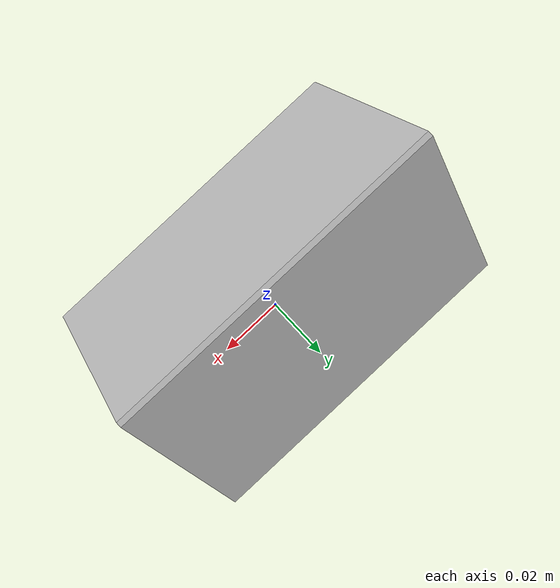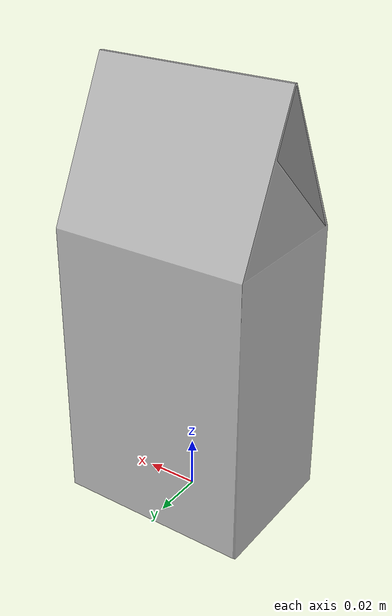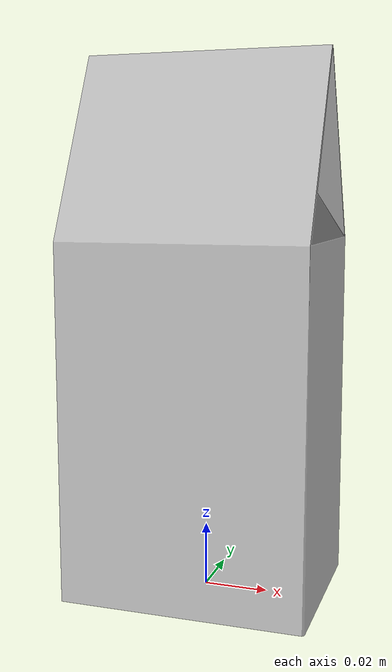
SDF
<?xml version="1.0" ?>
<sdf version="1.4">
  <model name="SemisweetChocolate">
    <link name="SemisweetChocolate_link">
      <inertial>
        <pose>0 0 0 0 0 0</pose>
        <mass>0.08</mass>
      </inertial>

      <visual name="SemisweetChocolate_visual">
        <pose>0 0 0 0 0 0</pose>
        <geometry>
          <mesh>
            <uri>model://SemisweetChocolate/meshes/SemisweetChocolate.dae</uri>
          </mesh>
        </geometry>
      </visual>

      <collision name="SemisweetChocolate_collision">
        <pose>0 0 0 0 0 0</pose>
        <geometry>
          <mesh>
            <uri>model://SemisweetChocolate/meshes/SemisweetChocolate.dae</uri>
          </mesh>
        </geometry>
        <surface>
          <friction>
            <ode>
              <mu>0.8</mu>
              <mu2>0.8</mu2>
              <fdir1>0.0 0.0 0.0</fdir1>
              <slip1>0.01</slip1>
              <slip2>0.01</slip2>
            </ode>
          </friction>
        </surface>
      </collision>

    </link>
  </model>
</sdf>
